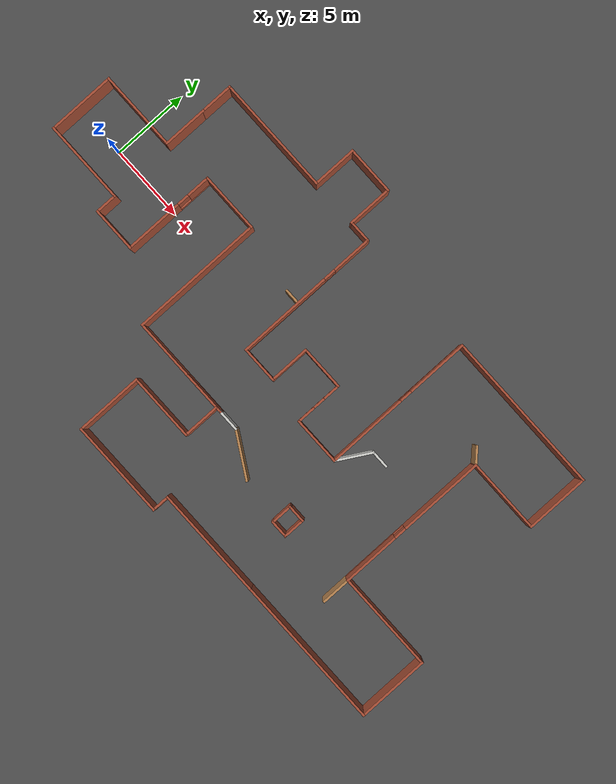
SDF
<sdf version="1.6">
 <world name="default">
  <light name="sun" type="directional">
   <pose>0 0 10 0 -0 0</pose>
   <diffuse>0.8 0.8 0.8 1</diffuse>
   <specular>0.2 0.2 0.2 1</specular>
   <attenuation>
    <range>1000</range>
    <constant>0.9</constant>
    <linear>0.01</linear>
    <quadratic>0.001</quadratic>
   </attenuation>
   <direction>-0.5 0.1 -0.9</direction>
  </light>
  <model name="ground_plane">
   <static>1</static>
   <link name="link">
    <collision name="collision">
     <geometry><plane><normal>0 0 1</normal><size>100 100</size></plane></geometry>
     <surface>
      <contact><collide_bitmask>65535</collide_bitmask></contact>
      <friction><ode><mu>100</mu><mu2>50</mu2></ode></friction>
     </surface>
    </collision>
    <visual name="visual">
     <cast_shadows>0</cast_shadows>
     <geometry><plane><normal>0 0 1</normal><size>100 100</size></plane></geometry>
     <material>
      <script><uri>file://media/materials/scripts/gazebo.material</uri><name>Gazebo/Grey</name></script>
     </material>
    </visual>
   </link>
  </model>
  <model name="asphalt_plane">
   <static>1</static>
   <link name="link">
    <collision name="collision"><geometry><box><size>200 200 0.1</size></box></geometry></collision>
    <visual name="visual">
     <cast_shadows>0</cast_shadows>
     <geometry><box><size>200 200 0.1</size></box></geometry>
     <material>
      <script>
       <uri>model://asphalt_plane/materials/scripts</uri>
       <uri>model://asphalt_plane/materials/textures</uri>
       <name>vrc/asphalt</name>
      </script>
     </material>
    </visual>
   </link>
  </model>
  <physics name="default_physics" default="0" type="ode">
   <ode>
    <solver>
     <type>quick</type>
     <iters>10</iters>
     <sor>1.3</sor>
     <use_dynamic_moi_rescaling>0</use_dynamic_moi_rescaling>
    </solver>
    <constraints>
     <cfm>0</cfm>
     <erp>0.2</erp>
     <contact_max_correcting_vel>100</contact_max_correcting_vel>
     <contact_surface_layer>0.001</contact_surface_layer>
    </constraints>
   </ode>
   <max_step_size>0.002</max_step_size>
   <real_time_factor>1</real_time_factor>
   <real_time_update_rate>500</real_time_update_rate>
  </physics>
  <gravity>0 0 -9.8066</gravity>
  <magnetic_field>6e-06 2.3e-05 -4.2e-05</magnetic_field>
  <atmosphere type="adiabatic"/>
  <scene><ambient>0.4 0.4 0.4 1</ambient><background>0.7 0.7 0.7 1</background><shadows>1</shadows></scene>
  <audio><device>default</device></audio>
  <spherical_coordinates>
   <surface_model>EARTH_WGS84</surface_model>
   <latitude_deg>0</latitude_deg>
   <longitude_deg>0</longitude_deg>
   <elevation>0</elevation>
   <heading_deg>0</heading_deg>
  </spherical_coordinates>
  <model name="complex_home_4">
   <pose>15.7162 -1.14982 0 0 -0 0</pose>
   <link name="Wall_10">
    <collision name="Wall_10_Collision">
     <geometry><box><size>5.5 0.15 2.5</size></box></geometry>
     <pose>0 0 1.25 0 -0 0</pose>
    </collision>
    <visual name="Wall_10_Visual">
     <pose>0 0 1.25 0 -0 0</pose>
     <geometry><box><size>5.5 0.15 2.5</size></box></geometry>
     <material>
      <script><uri>file://media/materials/scripts/gazebo.material</uri><name>Gazebo/Bricks</name></script>
      <ambient>1 1 1 1</ambient>
     </material>
     <meta><layer>0</layer></meta>
    </visual>
    <pose>-16.2 -0.775 0 0 -0 0</pose>
   </link>
   <link name="Wall_102">
    <collision name="Wall_102_Collision">
     <geometry><box><size>2.5 0.15 2.5</size></box></geometry>
     <pose>0 0 1.25 0 -0 0</pose>
    </collision>
    <visual name="Wall_102_Visual">
     <pose>0 0 1.25 0 -0 0</pose>
     <geometry><box><size>2.5 0.15 2.5</size></box></geometry>
     <material>
      <script><uri>file://media/materials/scripts/gazebo.material</uri><name>Gazebo/CeilingTiled</name></script>
      <ambient>1 1 1 1</ambient>
     </material>
     <meta><layer>0</layer></meta>
    </visual>
    <pose>7.2125 -0.55742 0 0 -0 1.0472</pose>
   </link>
   <link name="Wall_103">
    <collision name="Wall_103_Collision">
     <geometry><box><size>1.25 0.15 2.5</size></box></geometry>
     <pose>0 0 1.25 0 -0 0</pose>
    </collision>
    <visual name="Wall_103_Visual">
     <pose>0 0 1.25 0 -0 0</pose>
     <geometry><box><size>1.25 0.15 2.5</size></box></geometry>
     <material>
      <script><uri>file://media/materials/scripts/gazebo.material</uri><name>Gazebo/CeilingTiled</name></script>
      <ambient>1 1 1 1</ambient>
     </material>
     <meta><layer>0</layer></meta>
    </visual>
    <pose>8.35 0.46016 0 0 -0 0</pose>
   </link>
   <link name="Wall_106">
    <collision name="Wall_106_Collision">
     <geometry><box><size>10 0.15 2.5</size></box></geometry>
     <pose>0 0 1.25 0 -0 0</pose>
    </collision>
    <visual name="Wall_106_Visual">
     <pose>0 0 1.25 0 -0 0</pose>
     <geometry><box><size>10 0.15 2.5</size></box></geometry>
     <material>
      <script><uri>file://media/materials/scripts/gazebo.material</uri><name>Gazebo/Bricks</name></script>
      <ambient>1 1 1 1</ambient>
     </material>
     <meta><layer>0</layer></meta>
    </visual>
    <pose>13.95 -10.275 0 0 -0 0</pose>
   </link>
   <link name="Wall_107">
    <collision name="Wall_107_Collision">
     <geometry><box><size>4.75 0.15 2.5</size></box></geometry>
     <pose>0 0 1.25 0 -0 0</pose>
    </collision>
    <visual name="Wall_107_Visual">
     <pose>0 0 1.25 0 -0 0</pose>
     <geometry><box><size>4.75 0.15 2.5</size></box></geometry>
     <material>
      <script><uri>file://media/materials/scripts/gazebo.material</uri><name>Gazebo/Bricks</name></script>
      <ambient>1 1 1 1</ambient>
     </material>
     <meta><layer>0</layer></meta>
    </visual>
    <pose>18.875 -7.975 0 0 -0 1.5708</pose>
   </link>
   <link name="Wall_108">
    <collision name="Wall_108_Collision">
     <geometry><box><size>6.5 0.15 2.5</size></box></geometry>
     <pose>0 0 1.25 0 -0 0</pose>
    </collision>
    <visual name="Wall_108_Visual">
     <pose>0 0 1.25 0 -0 0</pose>
     <geometry><box><size>6.5 0.15 2.5</size></box></geometry>
     <material>
      <script><uri>file://media/materials/scripts/gazebo.material</uri><name>Gazebo/Bricks</name></script>
      <ambient>1 1 1 1</ambient>
     </material>
     <meta><layer>0</layer></meta>
    </visual>
    <pose>15.7 -5.675 0 0 -0 3.14159</pose>
   </link>
   <link name="Wall_110">
    <pose>12.375 -0.625 0 0 -0 -1.5708</pose>
    <visual name="Wall_110_Visual_0">
     <pose>-2.30408 0 1.25 0 -0 0</pose>
     <geometry><box><size>5.64185 0.15 2.5</size></box></geometry>
     <material>
      <script><uri>file://media/materials/scripts/gazebo.material</uri><name>Gazebo/Bricks</name></script>
      <ambient>1 1 1 1</ambient>
     </material>
     <meta><layer>0</layer></meta>
    </visual>
    <collision name="Wall_110_Collision_0">
     <geometry><box><size>5.64185 0.15 2.5</size></box></geometry>
     <pose>-2.30408 0 1.25 0 -0 0</pose>
    </collision>
    <visual name="Wall_110_Visual_1">
     <pose>2.82092 0 0.25 0 -0 0</pose>
     <geometry><box><size>4.60815 0.15 0.5</size></box></geometry>
     <material>
      <script><uri>file://media/materials/scripts/gazebo.material</uri><name>Gazebo/Bricks</name></script>
      <ambient>1 1 1 1</ambient>
     </material>
     <meta><layer>0</layer></meta>
    </visual>
    <collision name="Wall_110_Collision_1">
     <geometry><box><size>4.60815 0.15 0.5</size></box></geometry>
     <pose>2.82092 0 0.25 0 -0 0</pose>
    </collision>
    <visual name="Wall_110_Visual_2">
     <pose>3.22092 0 1.5 0 -0 0</pose>
     <geometry><box><size>3.80815 0.15 2</size></box></geometry>
     <material>
      <script><uri>file://media/materials/scripts/gazebo.material</uri><name>Gazebo/Bricks</name></script>
      <ambient>1 1 1 1</ambient>
     </material>
     <meta><layer>0</layer></meta>
    </visual>
    <collision name="Wall_110_Collision_2">
     <geometry><box><size>3.80815 0.15 2</size></box></geometry>
     <pose>3.22092 0 1.5 0 -0 0</pose>
    </collision>
    <visual name="Wall_110_Visual_3">
     <pose>0.916848 0 1.9 0 -0 0</pose>
     <geometry><box><size>0.8 0.15 1.2</size></box></geometry>
     <material>
      <script><uri>file://media/materials/scripts/gazebo.material</uri><name>Gazebo/Bricks</name></script>
      <ambient>1 1 1 1</ambient>
     </material>
     <meta><layer>0</layer></meta>
    </visual>
    <collision name="Wall_110_Collision_3">
     <geometry><box><size>0.8 0.15 1.2</size></box></geometry>
     <pose>0.916848 0 1.9 0 -0 0</pose>
    </collision>
   </link>
   <link name="Wall_111">
    <collision name="Wall_111_Collision">
     <geometry><box><size>2 0.15 2.5</size></box></geometry>
     <pose>0 0 1.25 0 -0 0</pose>
    </collision>
    <visual name="Wall_111_Visual">
     <pose>0 0 1.25 0 -0 0</pose>
     <geometry><box><size>2 0.15 2.5</size></box></geometry>
     <material>
      <script><uri>file://media/materials/scripts/gazebo.material</uri><name>Gazebo/Wood</name></script>
      <ambient>1 1 1 1</ambient>
     </material>
     <meta><layer>0</layer></meta>
    </visual>
    <pose>12.375 -6.6 0 0 -0 -1.5708</pose>
   </link>
   <link name="Wall_113">
    <collision name="Wall_113_Collision">
     <geometry><box><size>1.25 0.15 2.5</size></box></geometry>
     <pose>0 0 1.25 0 -0 0</pose>
    </collision>
    <visual name="Wall_113_Visual">
     <pose>0 0 1.25 0 -0 0</pose>
     <geometry><box><size>1.25 0.15 2.5</size></box></geometry>
     <material>
      <script><uri>file://media/materials/scripts/gazebo.material</uri><name>Gazebo/Wood</name></script>
      <ambient>1 1 1 1</ambient>
     </material>
     <meta><layer>0</layer></meta>
    </visual>
    <pose>11.9861 4.81391 0 0 -0 2.35619</pose>
   </link>
   <link name="Wall_116">
    <collision name="Wall_116_Collision">
     <geometry><box><size>1.25 0.15 2.5</size></box></geometry>
     <pose>0 0 1.25 0 -0 0</pose>
    </collision>
    <visual name="Wall_116_Visual">
     <pose>0 0 1.25 0 -0 0</pose>
     <geometry><box><size>1.25 0.15 2.5</size></box></geometry>
     <material>
      <script><uri>file://media/materials/scripts/gazebo.material</uri><name>Gazebo/Bricks</name></script>
      <ambient>1 1 1 1</ambient>
     </material>
     <meta><layer>0</layer></meta>
    </visual>
    <pose>7.44609 -5.31222 0 0 -0 0</pose>
   </link>
   <link name="Wall_117">
    <collision name="Wall_117_Collision">
     <geometry><box><size>1.5 0.15 2.5</size></box></geometry>
     <pose>0 0 1.25 0 -0 0</pose>
    </collision>
    <visual name="Wall_117_Visual">
     <pose>0 0 1.25 0 -0 0</pose>
     <geometry><box><size>1.5 0.15 2.5</size></box></geometry>
     <material>
      <script><uri>file://media/materials/scripts/gazebo.material</uri><name>Gazebo/Bricks</name></script>
      <ambient>1 1 1 1</ambient>
     </material>
     <meta><layer>0</layer></meta>
    </visual>
    <pose>7.99609 -5.98722 0 0 -0 -1.5708</pose>
   </link>
   <link name="Wall_118">
    <collision name="Wall_118_Collision">
     <geometry><box><size>1.25 0.15 2.5</size></box></geometry>
     <pose>0 0 1.25 0 -0 0</pose>
    </collision>
    <visual name="Wall_118_Visual">
     <pose>0 0 1.25 0 -0 0</pose>
     <geometry><box><size>1.25 0.15 2.5</size></box></geometry>
     <material>
      <script><uri>file://media/materials/scripts/gazebo.material</uri><name>Gazebo/Bricks</name></script>
      <ambient>1 1 1 1</ambient>
     </material>
     <meta><layer>0</layer></meta>
    </visual>
    <pose>7.44609 -6.66222 0 0 -0 3.14159</pose>
   </link>
   <link name="Wall_119">
    <collision name="Wall_119_Collision">
     <geometry><box><size>1.5 0.15 2.5</size></box></geometry>
     <pose>0 0 1.25 0 -0 0</pose>
    </collision>
    <visual name="Wall_119_Visual">
     <pose>0 0 1.25 0 -0 0</pose>
     <geometry><box><size>1.5 0.15 2.5</size></box></geometry>
     <material>
      <script><uri>file://media/materials/scripts/gazebo.material</uri><name>Gazebo/Bricks</name></script>
      <ambient>1 1 1 1</ambient>
     </material>
     <meta><layer>0</layer></meta>
    </visual>
    <pose>6.89609 -5.98722 0 0 -0 1.5708</pose>
   </link>
   <link name="Wall_13">
    <collision name="Wall_13_Collision">
     <geometry><box><size>1.5 0.15 2.5</size></box></geometry>
     <pose>0 0 1.25 0 -0 0</pose>
    </collision>
    <visual name="Wall_13_Visual">
     <pose>0 0 1.25 0 -0 0</pose>
     <geometry><box><size>1.5 0.15 2.5</size></box></geometry>
     <material>
      <script><uri>file://media/materials/scripts/gazebo.material</uri><name>Gazebo/Bricks</name></script>
      <ambient>1 1 1 1</ambient>
     </material>
     <meta><layer>0</layer></meta>
    </visual>
    <pose>-13.525 -1.45 0 0 -0 -1.5708</pose>
   </link>
   <link name="Wall_14">
    <collision name="Wall_14_Collision">
     <geometry><box><size>3 0.15 2.5</size></box></geometry>
     <pose>0 0 1.25 0 -0 0</pose>
    </collision>
    <visual name="Wall_14_Visual">
     <pose>0 0 1.25 0 -0 0</pose>
     <geometry><box><size>3 0.15 2.5</size></box></geometry>
     <material>
      <script><uri>file://media/materials/scripts/gazebo.material</uri><name>Gazebo/Bricks</name></script>
      <ambient>1 1 1 1</ambient>
     </material>
     <meta><layer>0</layer></meta>
    </visual>
    <pose>-12.1 -2.125 0 0 -0 0</pose>
   </link>
   <link name="Wall_33">
    <collision name="Wall_33_Collision">
     <geometry><box><size>3 0.15 2.5</size></box></geometry>
     <pose>0 0 1.25 0 -0 0</pose>
    </collision>
    <visual name="Wall_33_Visual">
     <pose>0 0 1.25 0 -0 0</pose>
     <geometry><box><size>3 0.15 2.5</size></box></geometry>
     <material>
      <script><uri>file://media/materials/scripts/gazebo.material</uri><name>Gazebo/Bricks</name></script>
      <ambient>1 1 1 1</ambient>
     </material>
     <meta><layer>0</layer></meta>
    </visual>
    <pose>-13.775 5 0 0 -0 1.5708</pose>
   </link>
   <link name="Wall_34">
    <collision name="Wall_34_Collision">
     <geometry><box><size>0.15 0.15 2.5</size></box></geometry>
     <pose>0 0 1.25 0 -0 0</pose>
    </collision>
    <visual name="Wall_34_Visual">
     <pose>0 0 1.25 0 -0 0</pose>
     <geometry><box><size>0.15 0.15 2.5</size></box></geometry>
     <material>
      <script><uri>file://media/materials/scripts/gazebo.material</uri><name>Gazebo/Grey</name></script>
      <ambient>1 1 1 1</ambient>
     </material>
     <meta><layer>0</layer></meta>
    </visual>
    <pose>-13.775 6.425 0 0 -0 0</pose>
   </link>
   <link name="Wall_43">
    <pose>-10.675 0.925 0 0 -0 1.5708</pose>
    <visual name="Wall_43_Visual_0">
     <pose>-1.19316 0 1.25 0 -0 0</pose>
     <geometry><box><size>3.86368 0.15 2.5</size></box></geometry>
     <material>
      <script><uri>file://media/materials/scripts/gazebo.material</uri><name>Gazebo/Bricks</name></script>
      <ambient>1 1 1 1</ambient>
     </material>
     <meta><layer>0</layer></meta>
    </visual>
    <collision name="Wall_43_Collision_0">
     <geometry><box><size>3.86368 0.15 2.5</size></box></geometry>
     <pose>-1.19316 0 1.25 0 -0 0</pose>
    </collision>
    <visual name="Wall_43_Visual_1">
     <pose>1.93184 0 0.25 0 -0 0</pose>
     <geometry><box><size>2.38632 0.15 0.5</size></box></geometry>
     <material>
      <script><uri>file://media/materials/scripts/gazebo.material</uri><name>Gazebo/Bricks</name></script>
      <ambient>1 1 1 1</ambient>
     </material>
     <meta><layer>0</layer></meta>
    </visual>
    <collision name="Wall_43_Collision_1">
     <geometry><box><size>2.38632 0.15 0.5</size></box></geometry>
     <pose>1.93184 0 0.25 0 -0 0</pose>
    </collision>
    <visual name="Wall_43_Visual_2">
     <pose>2.33184 0 1.5 0 -0 0</pose>
     <geometry><box><size>1.58632 0.15 2</size></box></geometry>
     <material>
      <script><uri>file://media/materials/scripts/gazebo.material</uri><name>Gazebo/Bricks</name></script>
      <ambient>1 1 1 1</ambient>
     </material>
     <meta><layer>0</layer></meta>
    </visual>
    <collision name="Wall_43_Collision_2">
     <geometry><box><size>1.58632 0.15 2</size></box></geometry>
     <pose>2.33184 0 1.5 0 -0 0</pose>
    </collision>
    <visual name="Wall_43_Visual_3">
     <pose>1.13868 0 1.9 0 -0 0</pose>
     <geometry><box><size>0.8 0.15 1.2</size></box></geometry>
     <material>
      <script><uri>file://media/materials/scripts/gazebo.material</uri><name>Gazebo/Bricks</name></script>
      <ambient>1 1 1 1</ambient>
     </material>
     <meta><layer>0</layer></meta>
    </visual>
    <collision name="Wall_43_Collision_3">
     <geometry><box><size>0.8 0.15 1.2</size></box></geometry>
     <pose>1.13868 0 1.9 0 -0 0</pose>
    </collision>
   </link>
   <link name="Wall_44">
    <collision name="Wall_44_Collision">
     <geometry><box><size>4 0.15 2.5</size></box></geometry>
     <pose>0 0 1.25 0 -0 0</pose>
    </collision>
    <visual name="Wall_44_Visual">
     <pose>0 0 1.25 0 -0 0</pose>
     <geometry><box><size>4 0.15 2.5</size></box></geometry>
     <material>
      <script><uri>file://media/materials/scripts/gazebo.material</uri><name>Gazebo/Bricks</name></script>
      <ambient>1 1 1 1</ambient>
     </material>
     <meta><layer>0</layer></meta>
    </visual>
    <pose>-8.75 3.975 0 0 -0 0</pose>
   </link>
   <link name="Wall_45">
    <collision name="Wall_45_Collision">
     <geometry><box><size>8.75 0.15 2.5</size></box></geometry>
     <pose>0 0 1.25 0 -0 0</pose>
    </collision>
    <visual name="Wall_45_Visual">
     <pose>0 0 1.25 0 -0 0</pose>
     <geometry><box><size>8.75 0.15 2.5</size></box></geometry>
     <material>
      <script><uri>file://media/materials/scripts/gazebo.material</uri><name>Gazebo/Bricks</name></script>
      <ambient>1 1 1 1</ambient>
     </material>
     <meta><layer>0</layer></meta>
    </visual>
    <pose>-6.825 -0.325 0 0 -0 -1.5708</pose>
   </link>
   <link name="Wall_48">
    <collision name="Wall_48_Collision">
     <geometry><box><size>2.25 0.15 2.5</size></box></geometry>
     <pose>0 0 1.25 0 -0 0</pose>
    </collision>
    <visual name="Wall_48_Visual">
     <pose>0 0 1.25 0 -0 0</pose>
     <geometry><box><size>2.25 0.15 2.5</size></box></geometry>
     <material>
      <script><uri>file://media/materials/scripts/gazebo.material</uri><name>Gazebo/Bricks</name></script>
      <ambient>1 1 1 1</ambient>
     </material>
     <meta><layer>0</layer></meta>
    </visual>
    <pose>-13.775 7.475 0 0 -0 1.5708</pose>
   </link>
   <link name="Wall_50">
    <pose>-1.675 3.725 0 0 -0 -1.5708</pose>
    <visual name="Wall_50_Visual_0">
     <pose>-3.53814 0 1.25 0 -0 0</pose>
     <geometry><box><size>2.67373 0.15 2.5</size></box></geometry>
     <material>
      <script><uri>file://media/materials/scripts/gazebo.material</uri><name>Gazebo/Bricks</name></script>
      <ambient>1 1 1 1</ambient>
     </material>
     <meta><layer>0</layer></meta>
    </visual>
    <collision name="Wall_50_Collision_0">
     <geometry><box><size>2.67373 0.15 2.5</size></box></geometry>
     <pose>-3.53814 0 1.25 0 -0 0</pose>
    </collision>
    <visual name="Wall_50_Visual_1">
     <pose>1.33686 0 0.25 0 -0 0</pose>
     <geometry><box><size>7.07627 0.15 0.5</size></box></geometry>
     <material>
      <script><uri>file://media/materials/scripts/gazebo.material</uri><name>Gazebo/Bricks</name></script>
      <ambient>1 1 1 1</ambient>
     </material>
     <meta><layer>0</layer></meta>
    </visual>
    <collision name="Wall_50_Collision_1">
     <geometry><box><size>7.07627 0.15 0.5</size></box></geometry>
     <pose>1.33686 0 0.25 0 -0 0</pose>
    </collision>
    <visual name="Wall_50_Visual_2">
     <pose>1.73686 0 1.5 0 -0 0</pose>
     <geometry><box><size>6.27627 0.15 2</size></box></geometry>
     <material>
      <script><uri>file://media/materials/scripts/gazebo.material</uri><name>Gazebo/Bricks</name></script>
      <ambient>1 1 1 1</ambient>
     </material>
     <meta><layer>0</layer></meta>
    </visual>
    <collision name="Wall_50_Collision_2">
     <geometry><box><size>6.27627 0.15 2</size></box></geometry>
     <pose>1.73686 0 1.5 0 -0 0</pose>
    </collision>
    <visual name="Wall_50_Visual_3">
     <pose>-1.80127 0 1.9 0 -0 0</pose>
     <geometry><box><size>0.8 0.15 1.2</size></box></geometry>
     <material>
      <script><uri>file://media/materials/scripts/gazebo.material</uri><name>Gazebo/Bricks</name></script>
      <ambient>1 1 1 1</ambient>
     </material>
     <meta><layer>0</layer></meta>
    </visual>
    <collision name="Wall_50_Collision_3">
     <geometry><box><size>0.8 0.15 1.2</size></box></geometry>
     <pose>-1.80127 0 1.9 0 -0 0</pose>
    </collision>
   </link>
   <link name="Wall_51">
    <collision name="Wall_51_Collision">
     <geometry><box><size>2.5 0.15 2.5</size></box></geometry>
     <pose>0 0 1.25 0 -0 0</pose>
    </collision>
    <visual name="Wall_51_Visual">
     <pose>0 0 1.25 0 -0 0</pose>
     <geometry><box><size>2.5 0.15 2.5</size></box></geometry>
     <material>
      <script><uri>file://media/materials/scripts/gazebo.material</uri><name>Gazebo/Bricks</name></script>
      <ambient>1 1 1 1</ambient>
     </material>
     <meta><layer>0</layer></meta>
    </visual>
    <pose>-0.5 -1.075 0 0 -0 0</pose>
   </link>
   <link name="Wall_52">
    <collision name="Wall_52_Collision">
     <geometry><box><size>2.75 0.15 2.5</size></box></geometry>
     <pose>0 0 1.25 0 -0 0</pose>
    </collision>
    <visual name="Wall_52_Visual">
     <pose>0 0 1.25 0 -0 0</pose>
     <geometry><box><size>2.75 0.15 2.5</size></box></geometry>
     <material>
      <script><uri>file://media/materials/scripts/gazebo.material</uri><name>Gazebo/Bricks</name></script>
      <ambient>1 1 1 1</ambient>
     </material>
     <meta><layer>0</layer></meta>
    </visual>
    <pose>0.674999 0.225 0 0 -0 1.5708</pose>
   </link>
   <link name="Wall_53">
    <collision name="Wall_53_Collision">
     <geometry><box><size>3 0.15 2.5</size></box></geometry>
     <pose>0 0 1.25 0 -0 0</pose>
    </collision>
    <visual name="Wall_53_Visual">
     <pose>0 0 1.25 0 -0 0</pose>
     <geometry><box><size>3 0.15 2.5</size></box></geometry>
     <material>
      <script><uri>file://media/materials/scripts/gazebo.material</uri><name>Gazebo/Bricks</name></script>
      <ambient>1 1 1 1</ambient>
     </material>
     <meta><layer>0</layer></meta>
    </visual>
    <pose>2.1 1.525 0 0 -0 0</pose>
   </link>
   <link name="Wall_54">
    <pose>3.525 -0.025 0 0 -0 -1.5708</pose>
    <visual name="Wall_54_Visual_0">
     <pose>-1.03514 0 1.25 0 -0 0</pose>
     <geometry><box><size>1.17972 0.15 2.5</size></box></geometry>
     <material>
      <script><uri>file://media/materials/scripts/gazebo.material</uri><name>Gazebo/Bricks</name></script>
      <ambient>1 1 1 1</ambient>
     </material>
     <meta><layer>0</layer></meta>
    </visual>
    <collision name="Wall_54_Collision_0">
     <geometry><box><size>1.17972 0.15 2.5</size></box></geometry>
     <pose>-1.03514 0 1.25 0 -0 0</pose>
    </collision>
    <visual name="Wall_54_Visual_1">
     <pose>0.589858 0 0.25 0 -0 0</pose>
     <geometry><box><size>2.07028 0.15 0.5</size></box></geometry>
     <material>
      <script><uri>file://media/materials/scripts/gazebo.material</uri><name>Gazebo/Bricks</name></script>
      <ambient>1 1 1 1</ambient>
     </material>
     <meta><layer>0</layer></meta>
    </visual>
    <collision name="Wall_54_Collision_1">
     <geometry><box><size>2.07028 0.15 0.5</size></box></geometry>
     <pose>0.589858 0 0.25 0 -0 0</pose>
    </collision>
    <visual name="Wall_54_Visual_2">
     <pose>0.989858 0 1.5 0 -0 0</pose>
     <geometry><box><size>1.27028 0.15 2</size></box></geometry>
     <material>
      <script><uri>file://media/materials/scripts/gazebo.material</uri><name>Gazebo/Bricks</name></script>
      <ambient>1 1 1 1</ambient>
     </material>
     <meta><layer>0</layer></meta>
    </visual>
    <collision name="Wall_54_Collision_2">
     <geometry><box><size>1.27028 0.15 2</size></box></geometry>
     <pose>0.989858 0 1.5 0 -0 0</pose>
    </collision>
    <visual name="Wall_54_Visual_3">
     <pose>-0.045284 0 1.9 0 -0 0</pose>
     <geometry><box><size>0.8 0.15 1.2</size></box></geometry>
     <material>
      <script><uri>file://media/materials/scripts/gazebo.material</uri><name>Gazebo/Bricks</name></script>
      <ambient>1 1 1 1</ambient>
     </material>
     <meta><layer>0</layer></meta>
    </visual>
    <collision name="Wall_54_Collision_3">
     <geometry><box><size>0.8 0.15 1.2</size></box></geometry>
     <pose>-0.045284 0 1.9 0 -0 0</pose>
    </collision>
   </link>
   <link name="Wall_55">
    <collision name="Wall_55_Collision">
     <geometry><box><size>3.25 0.15 2.5</size></box></geometry>
     <pose>0 0 1.25 0 -0 0</pose>
    </collision>
    <visual name="Wall_55_Visual">
     <pose>0 0 1.25 0 -0 0</pose>
     <geometry><box><size>3.25 0.15 2.5</size></box></geometry>
     <material>
      <script><uri>file://media/materials/scripts/gazebo.material</uri><name>Gazebo/Bricks</name></script>
      <ambient>1 1 1 1</ambient>
     </material>
     <meta><layer>0</layer></meta>
    </visual>
    <pose>5.075 -1.575 0 0 -0 0</pose>
   </link>
   <link name="Wall_56">
    <pose>6.625 3.475 0 0 -0 1.5708</pose>
    <visual name="Wall_56_Visual_0">
     <pose>-2.46088 0 1.25 0 -0 0</pose>
     <geometry><box><size>5.32824 0.15 2.5</size></box></geometry>
     <material>
      <script><uri>file://media/materials/scripts/gazebo.material</uri><name>Gazebo/Bricks</name></script>
      <ambient>1 1 1 1</ambient>
     </material>
     <meta><layer>0</layer></meta>
    </visual>
    <collision name="Wall_56_Collision_0">
     <geometry><box><size>5.32824 0.15 2.5</size></box></geometry>
     <pose>-2.46088 0 1.25 0 -0 0</pose>
    </collision>
    <visual name="Wall_56_Visual_1">
     <pose>2.66412 0 0.25 0 -0 0</pose>
     <geometry><box><size>4.92176 0.15 0.5</size></box></geometry>
     <material>
      <script><uri>file://media/materials/scripts/gazebo.material</uri><name>Gazebo/Bricks</name></script>
      <ambient>1 1 1 1</ambient>
     </material>
     <meta><layer>0</layer></meta>
    </visual>
    <collision name="Wall_56_Collision_1">
     <geometry><box><size>4.92176 0.15 0.5</size></box></geometry>
     <pose>2.66412 0 0.25 0 -0 0</pose>
    </collision>
    <visual name="Wall_56_Visual_2">
     <pose>3.06412 0 1.5 0 -0 0</pose>
     <geometry><box><size>4.12176 0.15 2</size></box></geometry>
     <material>
      <script><uri>file://media/materials/scripts/gazebo.material</uri><name>Gazebo/Bricks</name></script>
      <ambient>1 1 1 1</ambient>
     </material>
     <meta><layer>0</layer></meta>
    </visual>
    <collision name="Wall_56_Collision_2">
     <geometry><box><size>4.12176 0.15 2</size></box></geometry>
     <pose>3.06412 0 1.5 0 -0 0</pose>
    </collision>
    <visual name="Wall_56_Visual_3">
     <pose>0.603243 0 1.9 0 -0 0</pose>
     <geometry><box><size>0.8 0.15 1.2</size></box></geometry>
     <material>
      <script><uri>file://media/materials/scripts/gazebo.material</uri><name>Gazebo/Bricks</name></script>
      <ambient>1 1 1 1</ambient>
     </material>
     <meta><layer>0</layer></meta>
    </visual>
    <collision name="Wall_56_Collision_3">
     <geometry><box><size>0.8 0.15 1.2</size></box></geometry>
     <pose>0.603243 0 1.9 0 -0 0</pose>
    </collision>
   </link>
   <link name="Wall_57">
    <collision name="Wall_57_Collision">
     <geometry><box><size>10.75 0.15 2.5</size></box></geometry>
     <pose>0 0 1.25 0 -0 0</pose>
    </collision>
    <visual name="Wall_57_Visual">
     <pose>0 0 1.25 0 -0 0</pose>
     <geometry><box><size>10.75 0.15 2.5</size></box></geometry>
     <material>
      <script><uri>file://media/materials/scripts/gazebo.material</uri><name>Gazebo/Bricks</name></script>
      <ambient>1 1 1 1</ambient>
     </material>
     <meta><layer>0</layer></meta>
    </visual>
    <pose>11.925 8.525 0 0 -0 0</pose>
   </link>
   <link name="Wall_58">
    <collision name="Wall_58_Collision">
     <geometry><box><size>4.25 0.15 2.5</size></box></geometry>
     <pose>0 0 1.25 0 -0 0</pose>
    </collision>
    <visual name="Wall_58_Visual">
     <pose>0 0 1.25 0 -0 0</pose>
     <geometry><box><size>4.25 0.15 2.5</size></box></geometry>
     <material>
      <script><uri>file://media/materials/scripts/gazebo.material</uri><name>Gazebo/Bricks</name></script>
      <ambient>1 1 1 1</ambient>
     </material>
     <meta><layer>0</layer></meta>
    </visual>
    <pose>17.225 6.475 0 0 -0 -1.5708</pose>
   </link>
   <link name="Wall_59">
    <collision name="Wall_59_Collision">
     <geometry><box><size>5 0.15 2.5</size></box></geometry>
     <pose>0 0 1.25 0 -0 0</pose>
    </collision>
    <visual name="Wall_59_Visual">
     <pose>0 0 1.25 0 -0 0</pose>
     <geometry><box><size>5 0.15 2.5</size></box></geometry>
     <material>
      <script><uri>file://media/materials/scripts/gazebo.material</uri><name>Gazebo/Bricks</name></script>
      <ambient>1 1 1 1</ambient>
     </material>
     <meta><layer>0</layer></meta>
    </visual>
    <pose>14.8 4.425 0 0 -0 3.14159</pose>
   </link>
   <link name="Wall_67">
    <pose>-3.4 -4.625 0 0 -0 0</pose>
    <visual name="Wall_67_Visual_0">
     <pose>-1.48984 0 1.25 0 -0 0</pose>
     <geometry><box><size>4.02032 0.15 2.5</size></box></geometry>
     <material>
      <script><uri>file://media/materials/scripts/gazebo.material</uri><name>Gazebo/Bricks</name></script>
      <ambient>1 1 1 1</ambient>
     </material>
     <meta><layer>0</layer></meta>
    </visual>
    <collision name="Wall_67_Collision_0">
     <geometry><box><size>4.02032 0.15 2.5</size></box></geometry>
     <pose>-1.48984 0 1.25 0 -0 0</pose>
    </collision>
    <visual name="Wall_67_Visual_1">
     <pose>2.01016 0 0.25 0 -0 0</pose>
     <geometry><box><size>2.97968 0.15 0.5</size></box></geometry>
     <material>
      <script><uri>file://media/materials/scripts/gazebo.material</uri><name>Gazebo/Bricks</name></script>
      <ambient>1 1 1 1</ambient>
     </material>
     <meta><layer>0</layer></meta>
    </visual>
    <collision name="Wall_67_Collision_1">
     <geometry><box><size>2.97968 0.15 0.5</size></box></geometry>
     <pose>2.01016 0 0.25 0 -0 0</pose>
    </collision>
    <visual name="Wall_67_Visual_2">
     <pose>2.41016 0 1.5 0 -0 0</pose>
     <geometry><box><size>2.17969 0.15 2</size></box></geometry>
     <material>
      <script><uri>file://media/materials/scripts/gazebo.material</uri><name>Gazebo/Bricks</name></script>
      <ambient>1 1 1 1</ambient>
     </material>
     <meta><layer>0</layer></meta>
    </visual>
    <collision name="Wall_67_Collision_2">
     <geometry><box><size>2.17969 0.15 2</size></box></geometry>
     <pose>2.41016 0 1.5 0 -0 0</pose>
    </collision>
    <visual name="Wall_67_Visual_3">
     <pose>0.920315 0 1.9 0 -0 0</pose>
     <geometry><box><size>0.8 0.15 1.2</size></box></geometry>
     <material>
      <script><uri>file://media/materials/scripts/gazebo.material</uri><name>Gazebo/Bricks</name></script>
      <ambient>1 1 1 1</ambient>
     </material>
     <meta><layer>0</layer></meta>
    </visual>
    <collision name="Wall_67_Collision_3">
     <geometry><box><size>0.8 0.15 1.2</size></box></geometry>
     <pose>0.920315 0 1.9 0 -0 0</pose>
    </collision>
   </link>
   <link name="Wall_7">
    <collision name="Wall_7_Collision">
     <geometry><box><size>5.25 0.15 2.5</size></box></geometry>
     <pose>0 0 1.25 0 -0 0</pose>
    </collision>
    <visual name="Wall_7_Visual">
     <pose>0 0 1.25 0 -0 0</pose>
     <geometry><box><size>5.25 0.15 2.5</size></box></geometry>
     <material>
      <script><uri>file://media/materials/scripts/gazebo.material</uri><name>Gazebo/Bricks</name></script>
      <ambient>1 1 1 1</ambient>
     </material>
     <meta><layer>0</layer></meta>
    </visual>
    <pose>-16.325 3.575 0 0 -0 0</pose>
   </link>
   <link name="Wall_74">
    <collision name="Wall_74_Collision">
     <geometry><box><size>7.5 0.15 2.5</size></box></geometry>
     <pose>0 0 1.25 0 -0 0</pose>
    </collision>
    <visual name="Wall_74_Visual">
     <pose>0 0 1.25 0 -0 0</pose>
     <geometry><box><size>7.5 0.15 2.5</size></box></geometry>
     <material>
      <script><uri>file://media/materials/scripts/gazebo.material</uri><name>Gazebo/Bricks</name></script>
      <ambient>1 1 1 1</ambient>
     </material>
     <meta><layer>0</layer></meta>
    </visual>
    <pose>5.35 -10.275 0 0 -0 3.14159</pose>
   </link>
   <link name="Wall_76">
    <collision name="Wall_76_Collision">
     <geometry><box><size>1.25 0.15 2.5</size></box></geometry>
     <pose>0 0 1.25 0 -0 0</pose>
    </collision>
    <visual name="Wall_76_Visual">
     <pose>0 0 1.25 0 -0 0</pose>
     <geometry><box><size>1.25 0.15 2.5</size></box></geometry>
     <material>
      <script><uri>file://media/materials/scripts/gazebo.material</uri><name>Gazebo/Bricks</name></script>
      <ambient>1 1 1 1</ambient>
     </material>
     <meta><layer>0</layer></meta>
    </visual>
    <pose>1.675 -10.825 0 0 -0 -1.5708</pose>
   </link>
   <link name="Wall_79">
    <collision name="Wall_79_Collision">
     <geometry><box><size>6.5 0.15 2.5</size></box></geometry>
     <pose>0 0 1.25 0 -0 0</pose>
    </collision>
    <visual name="Wall_79_Visual">
     <pose>0 0 1.25 0 -0 0</pose>
     <geometry><box><size>6.5 0.15 2.5</size></box></geometry>
     <material>
      <script><uri>file://media/materials/scripts/gazebo.material</uri><name>Gazebo/Bricks</name></script>
      <ambient>1 1 1 1</ambient>
     </material>
     <meta><layer>0</layer></meta>
    </visual>
    <pose>-1.5 -11.375 0 0 -0 3.14159</pose>
   </link>
   <link name="Wall_80">
    <collision name="Wall_80_Collision">
     <geometry><box><size>4.5 0.15 2.5</size></box></geometry>
     <pose>0 0 1.25 0 -0 0</pose>
    </collision>
    <visual name="Wall_80_Visual">
     <pose>0 0 1.25 0 -0 0</pose>
     <geometry><box><size>4.5 0.15 2.5</size></box></geometry>
     <material>
      <script><uri>file://media/materials/scripts/gazebo.material</uri><name>Gazebo/Bricks</name></script>
      <ambient>1 1 1 1</ambient>
     </material>
     <meta><layer>0</layer></meta>
    </visual>
    <pose>-4.675 -9.2 0 0 -0 1.5708</pose>
   </link>
   <link name="Wall_81">
    <collision name="Wall_81_Collision">
     <geometry><box><size>4.5 0.15 2.5</size></box></geometry>
     <pose>0 0 1.25 0 -0 0</pose>
    </collision>
    <visual name="Wall_81_Visual">
     <pose>0 0 1.25 0 -0 0</pose>
     <geometry><box><size>4.5 0.15 2.5</size></box></geometry>
     <material>
      <script><uri>file://media/materials/scripts/gazebo.material</uri><name>Gazebo/Bricks</name></script>
      <ambient>1 1 1 1</ambient>
     </material>
     <meta><layer>0</layer></meta>
    </visual>
    <pose>-2.5 -7.025 0 0 -0 0</pose>
   </link>
   <link name="Wall_82">
    <collision name="Wall_82_Collision">
     <geometry><box><size>2.5 0.15 2.5</size></box></geometry>
     <pose>0 0 1.25 0 -0 0</pose>
    </collision>
    <visual name="Wall_82_Visual">
     <pose>0 0 1.25 0 -0 0</pose>
     <geometry><box><size>2.5 0.15 2.5</size></box></geometry>
     <material>
      <script><uri>file://media/materials/scripts/gazebo.material</uri><name>Gazebo/Bricks</name></script>
      <ambient>1 1 1 1</ambient>
     </material>
     <meta><layer>0</layer></meta>
    </visual>
    <pose>-0.325 -5.85 0 0 -0 1.5708</pose>
   </link>
   <link name="Wall_85">
    <collision name="Wall_85_Collision">
     <geometry><box><size>7.75 0.15 2.5</size></box></geometry>
     <pose>0 0 1.25 0 -0 0</pose>
    </collision>
    <visual name="Wall_85_Visual">
     <pose>0 0 1.25 0 -0 0</pose>
     <geometry><box><size>7.75 0.15 2.5</size></box></geometry>
     <material>
      <script><uri>file://media/materials/scripts/gazebo.material</uri><name>Gazebo/Bricks</name></script>
      <ambient>1 1 1 1</ambient>
     </material>
     <meta><layer>0</layer></meta>
    </visual>
    <pose>-9.975 8.525 0 0 -0 0</pose>
   </link>
   <link name="Wall_86">
    <collision name="Wall_86_Collision">
     <geometry><box><size>3 0.15 2.5</size></box></geometry>
     <pose>0 0 1.25 0 -0 0</pose>
    </collision>
    <visual name="Wall_86_Visual">
     <pose>0 0 1.25 0 -0 0</pose>
     <geometry><box><size>3 0.15 2.5</size></box></geometry>
     <material>
      <script><uri>file://media/materials/scripts/gazebo.material</uri><name>Gazebo/Bricks</name></script>
      <ambient>1 1 1 1</ambient>
     </material>
     <meta><layer>0</layer></meta>
    </visual>
    <pose>-6.175 9.95 0 0 -0 1.5708</pose>
   </link>
   <link name="Wall_87">
    <collision name="Wall_87_Collision">
     <geometry><box><size>3.25 0.15 2.5</size></box></geometry>
     <pose>0 0 1.25 0 -0 0</pose>
    </collision>
    <visual name="Wall_87_Visual">
     <pose>0 0 1.25 0 -0 0</pose>
     <geometry><box><size>3.25 0.15 2.5</size></box></geometry>
     <material>
      <script><uri>file://media/materials/scripts/gazebo.material</uri><name>Gazebo/Bricks</name></script>
      <ambient>1 1 1 1</ambient>
     </material>
     <meta><layer>0</layer></meta>
    </visual>
    <pose>-4.625 11.375 0 0 -0 0</pose>
   </link>
   <link name="Wall_88">
    <collision name="Wall_88_Collision">
     <geometry><box><size>3 0.15 2.5</size></box></geometry>
     <pose>0 0 1.25 0 -0 0</pose>
    </collision>
    <visual name="Wall_88_Visual">
     <pose>0 0 1.25 0 -0 0</pose>
     <geometry><box><size>3 0.15 2.5</size></box></geometry>
     <material>
      <script><uri>file://media/materials/scripts/gazebo.material</uri><name>Gazebo/Bricks</name></script>
      <ambient>1 1 1 1</ambient>
     </material>
     <meta><layer>0</layer></meta>
    </visual>
    <pose>-3.075 9.95 0 0 -0 -1.5708</pose>
   </link>
   <link name="Wall_89">
    <collision name="Wall_89_Collision">
     <geometry><box><size>1.55 0.15 2.5</size></box></geometry>
     <pose>0 0 1.25 0 -0 0</pose>
    </collision>
    <visual name="Wall_89_Visual">
     <pose>0 0 1.25 0 -0 0</pose>
     <geometry><box><size>1.55 0.15 2.5</size></box></geometry>
     <material>
      <script><uri>file://media/materials/scripts/gazebo.material</uri><name>Gazebo/Bricks</name></script>
      <ambient>1 1 1 1</ambient>
     </material>
     <meta><layer>0</layer></meta>
    </visual>
    <pose>-2.375 8.525 0 0 -0 0</pose>
   </link>
   <link name="Wall_9">
    <collision name="Wall_9_Collision">
     <geometry><box><size>4.5 0.15 2.5</size></box></geometry>
     <pose>0 0 1.25 0 -0 0</pose>
    </collision>
    <visual name="Wall_9_Visual">
     <pose>0 0 1.25 0 -0 0</pose>
     <geometry><box><size>4.5 0.15 2.5</size></box></geometry>
     <material>
      <script><uri>file://media/materials/scripts/gazebo.material</uri><name>Gazebo/Bricks</name></script>
      <ambient>1 1 1 1</ambient>
     </material>
     <meta><layer>0</layer></meta>
    </visual>
    <pose>-18.875 1.4 0 0 -0 -1.5708</pose>
   </link>
   <link name="Wall_95">
    <collision name="Wall_95_Collision">
     <geometry><box><size>1 0.15 2.5</size></box></geometry>
     <pose>0 0 1.25 0 -0 0</pose>
    </collision>
    <visual name="Wall_95_Visual">
     <pose>0 0 1.25 0 -0 0</pose>
     <geometry><box><size>1 0.15 2.5</size></box></geometry>
     <material>
      <script><uri>file://media/materials/scripts/gazebo.material</uri><name>Gazebo/Wood</name></script>
      <ambient>1 1 1 1</ambient>
     </material>
     <meta><layer>0</layer></meta>
    </visual>
    <pose>-2.20724 3.03043 0 0 -0 0</pose>
   </link>
   <link name="Wall_97">
    <collision name="Wall_97_Collision">
     <geometry><box><size>1.5 0.15 2.5</size></box></geometry>
     <pose>0 0 1.25 0 -0 0</pose>
    </collision>
    <visual name="Wall_97_Visual">
     <pose>0 0 1.25 0 -0 0</pose>
     <geometry><box><size>1.5 0.15 2.5</size></box></geometry>
     <material>
      <script><uri>file://media/materials/scripts/gazebo.material</uri><name>Gazebo/CeilingTiled</name></script>
      <ambient>1 1 1 1</ambient>
     </material>
     <meta><layer>0</layer></meta>
    </visual>
    <pose>0.700001 -4.625 0 0 -0 0</pose>
   </link>
   <link name="Wall_98">
    <collision name="Wall_98_Collision">
     <geometry><box><size>3.25 0.15 2.5</size></box></geometry>
     <pose>0 0 1.25 0 -0 0</pose>
    </collision>
    <visual name="Wall_98_Visual">
     <pose>0 0 1.25 0 -0 0</pose>
     <geometry><box><size>3.25 0.15 2.5</size></box></geometry>
     <material>
      <script><uri>file://media/materials/scripts/gazebo.material</uri><name>Gazebo/Wood</name></script>
      <ambient>1 1 1 1</ambient>
     </material>
     <meta><layer>0</layer></meta>
    </visual>
    <pose>2.71734 -5.4 0 0 -0 -0.523599</pose>
   </link>
   <static>1</static>
  </model>
 </world>
</sdf>
